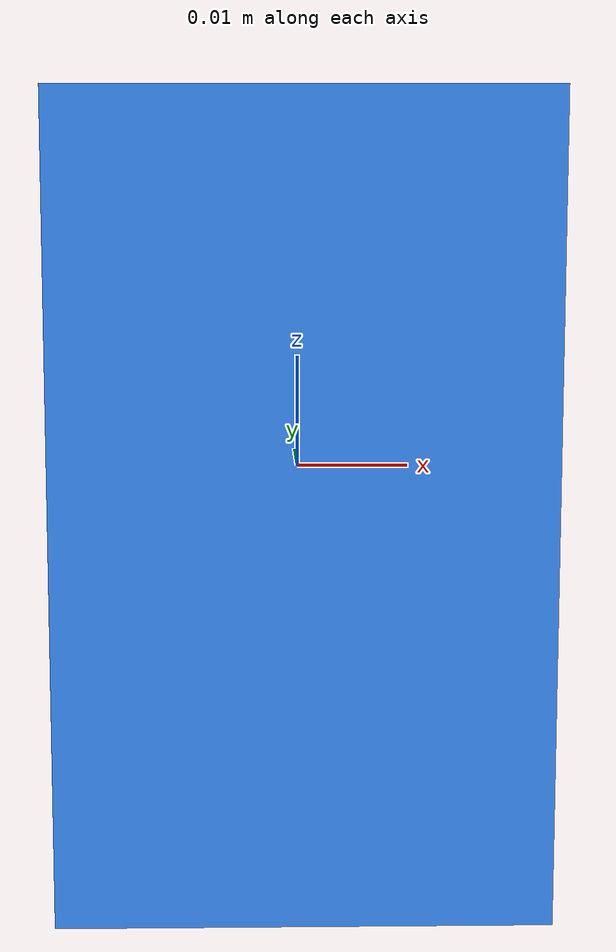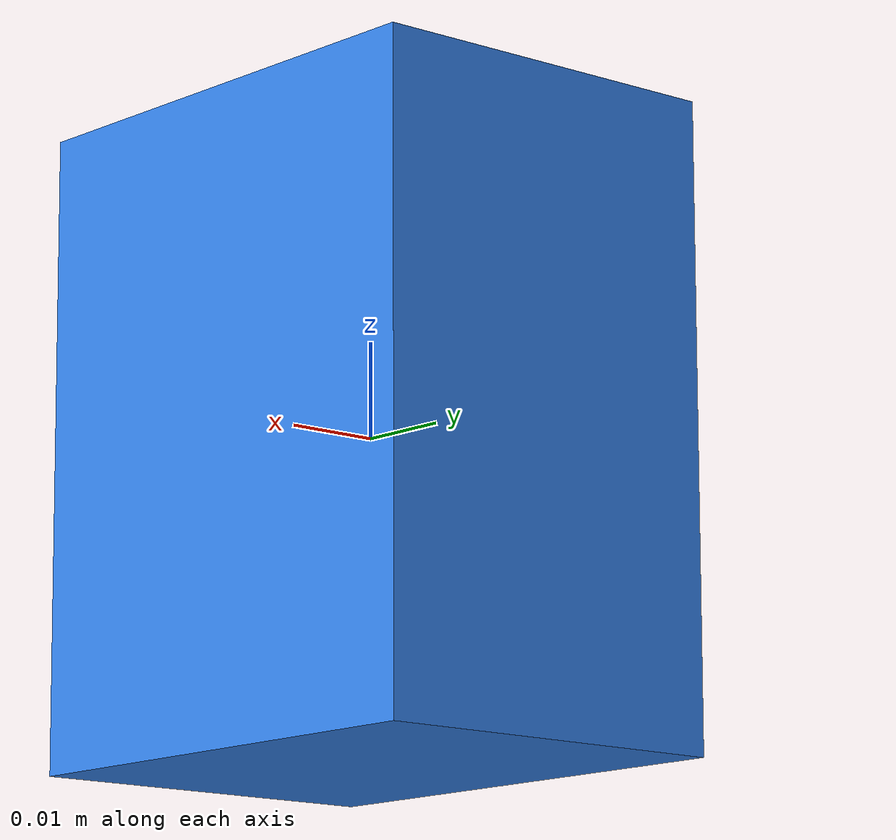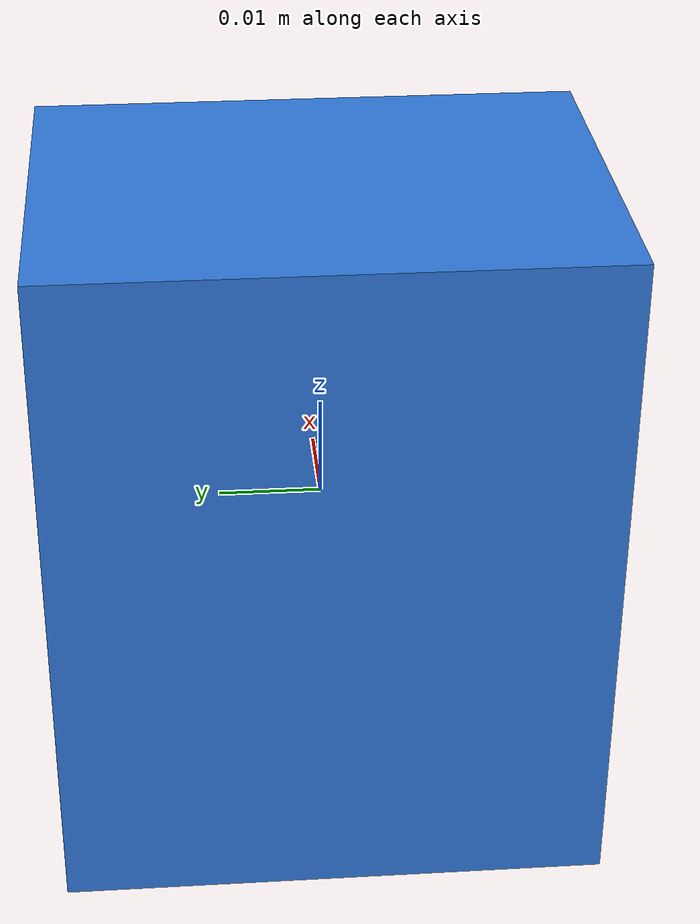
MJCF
<mujoco model="box">
  <worldbody>
    <body name="grasp_object" pos="0 0 0" quat="1 0 0 0">
      <freejoint name="grasp_object_freejoint"/>
      <geom
        name="grasp_object_geom"
        type="box"
        size="0.02 0.0266666667 0.0333333333"
        density="400"
        friction="0.7 0.02 0.002"
        rgba="0.2 0.5 0.9 1"/>
      <site name="grasp_anchor" pos="0 0 0" size="0.004" rgba="1 0.2 0.2 1"/>
    </body>
  </worldbody>
</mujoco>
